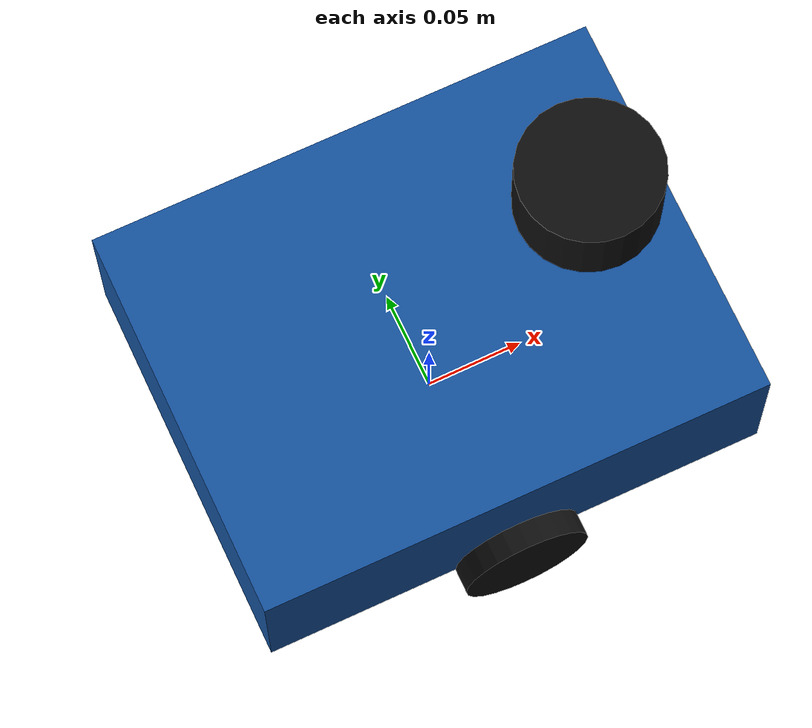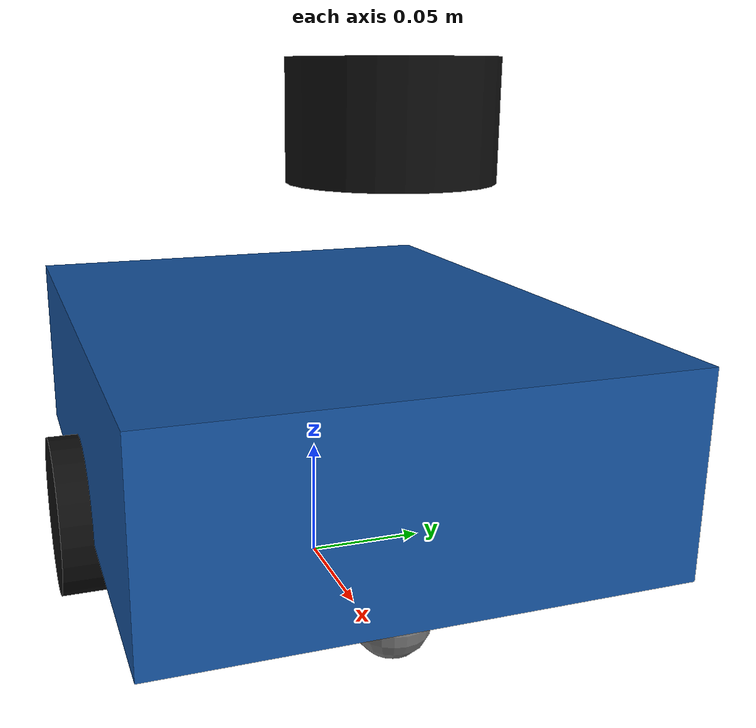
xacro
<?xml version="1.0"?>
<robot name="openrobot_one" xmlns:xacro="http://www.ros.org/wiki/xacro">
  <xacro:include filename="common_properties.xacro"/>
  <xacro:include filename="inertial_macros.xacro"/>
  <xacro:include filename="base.xacro"/>
  <xacro:include filename="wheel.xacro"/>
  <xacro:include filename="sensor.xacro"/>
  <xacro:include filename="gazebo.xacro"/>

  <xacro:arg name="base_length" default="0.26"/>
  <xacro:arg name="base_width" default="0.20"/>
  <xacro:arg name="base_height" default="0.08"/>
  <xacro:arg name="wheel_radius" default="0.0325"/>
  <xacro:arg name="wheel_width" default="0.025"/>
  <xacro:arg name="wheel_separation" default="0.20"/>
  <xacro:arg name="update_rate" default="50.0"/>
  <xacro:arg name="max_wheel_torque" default="20.0"/>
  <xacro:arg name="max_wheel_acceleration" default="1.0"/>
  <xacro:arg name="scan_topic" default="scan"/>

  <xacro:property name="base_length" value="$(arg base_length)"/>
  <xacro:property name="base_width" value="$(arg base_width)"/>
  <xacro:property name="base_height" value="$(arg base_height)"/>
  <xacro:property name="wheel_radius" value="$(arg wheel_radius)"/>
  <xacro:property name="wheel_width" value="$(arg wheel_width)"/>
  <xacro:property name="wheel_separation" value="$(arg wheel_separation)"/>
  <xacro:property name="update_rate" value="$(arg update_rate)"/>
  <xacro:property
    name="max_wheel_torque"
    value="$(arg max_wheel_torque)"/>
  <xacro:property
    name="max_wheel_acceleration"
    value="$(arg max_wheel_acceleration)"/>
  <xacro:property name="scan_topic" value="$(arg scan_topic)"/>
  <xacro:property name="base_mass" value="3.0"/>
  <xacro:property name="wheel_mass" value="0.25"/>
  <xacro:property name="caster_radius" value="0.015"/>
  <xacro:property name="caster_mass" value="0.05"/>
  <xacro:property name="laser_radius" value="0.035"/>
  <xacro:property name="laser_height" value="0.04"/>
  <xacro:property name="laser_mass" value="0.15"/>

  <xacro:openrobot_base
    base_length="${base_length}"
    base_width="${base_width}"
    base_height="${base_height}"
    base_mass="${base_mass}"
    wheel_radius="${wheel_radius}"/>

  <xacro:openrobot_wheels
    base_length="${base_length}"
    base_height="${base_height}"
    wheel_radius="${wheel_radius}"
    wheel_width="${wheel_width}"
    wheel_separation="${wheel_separation}"
    wheel_mass="${wheel_mass}"
    caster_radius="${caster_radius}"
    caster_mass="${caster_mass}"/>

  <xacro:openrobot_laser
    laser_x="0.08"
    laser_z="0.12"
    laser_radius="${laser_radius}"
    laser_height="${laser_height}"
    laser_mass="${laser_mass}"/>

  <xacro:openrobot_gazebo
    wheel_radius="${wheel_radius}"
    wheel_separation="${wheel_separation}"
    update_rate="${update_rate}"
    max_wheel_torque="${max_wheel_torque}"
    max_wheel_acceleration="${max_wheel_acceleration}"
    scan_topic="${scan_topic}"/>
</robot>

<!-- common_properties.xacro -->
<robot xmlns:xacro="http://www.ros.org/wiki/xacro">
  <material name="openrobot_blue">
    <color rgba="0.08 0.32 0.62 1.0"/>
  </material>
  <material name="openrobot_black">
    <color rgba="0.05 0.05 0.05 1.0"/>
  </material>
  <material name="openrobot_gray">
    <color rgba="0.45 0.45 0.45 1.0"/>
  </material>
</robot>

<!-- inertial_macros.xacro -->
<robot xmlns:xacro="http://www.ros.org/wiki/xacro">
  <xacro:macro name="box_inertial" params="mass x y z">
    <inertial>
      <mass value="${mass}"/>
      <inertia
        ixx="${mass * (y * y + z * z) / 12.0}"
        ixy="0.0"
        ixz="0.0"
        iyy="${mass * (x * x + z * z) / 12.0}"
        iyz="0.0"
        izz="${mass * (x * x + y * y) / 12.0}"/>
    </inertial>
  </xacro:macro>

  <xacro:macro name="cylinder_inertial" params="mass radius length rpy">
    <inertial>
      <origin xyz="0 0 0" rpy="${rpy}"/>
      <mass value="${mass}"/>
      <inertia
        ixx="${mass * (3.0 * radius * radius + length * length) / 12.0}"
        ixy="0.0"
        ixz="0.0"
        iyy="${mass * (3.0 * radius * radius + length * length) / 12.0}"
        iyz="0.0"
        izz="${mass * radius * radius / 2.0}"/>
    </inertial>
  </xacro:macro>

  <xacro:macro name="sphere_inertial" params="mass radius">
    <inertial>
      <mass value="${mass}"/>
      <inertia
        ixx="${2.0 * mass * radius * radius / 5.0}"
        ixy="0.0"
        ixz="0.0"
        iyy="${2.0 * mass * radius * radius / 5.0}"
        iyz="0.0"
        izz="${2.0 * mass * radius * radius / 5.0}"/>
    </inertial>
  </xacro:macro>
</robot>

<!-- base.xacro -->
<robot xmlns:xacro="http://www.ros.org/wiki/xacro">
  <xacro:macro
    name="openrobot_base"
    params="base_length base_width base_height base_mass wheel_radius">
    <link name="base_footprint"/>

    <link name="base_link">
      <visual>
        <geometry>
          <box size="${base_length} ${base_width} ${base_height}"/>
        </geometry>
        <material name="openrobot_blue"/>
      </visual>
      <collision>
        <geometry>
          <box size="${base_length} ${base_width} ${base_height}"/>
        </geometry>
      </collision>
      <xacro:box_inertial
        mass="${base_mass}"
        x="${base_length}"
        y="${base_width}"
        z="${base_height}"/>
    </link>

    <joint name="base_footprint_joint" type="fixed">
      <parent link="base_footprint"/>
      <child link="base_link"/>
      <origin xyz="0 0 ${wheel_radius + base_height / 2.0}"/>
    </joint>
  </xacro:macro>
</robot>

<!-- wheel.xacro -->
<robot xmlns:xacro="http://www.ros.org/wiki/xacro">
  <xacro:macro
    name="drive_wheel"
    params="side y wheel_radius wheel_width wheel_mass base_height">
    <link name="${side}_wheel_link">
      <visual>
        <origin rpy="${pi / 2.0} 0 0"/>
        <geometry>
          <cylinder radius="${wheel_radius}" length="${wheel_width}"/>
        </geometry>
        <material name="openrobot_black"/>
      </visual>
      <collision>
        <origin rpy="${pi / 2.0} 0 0"/>
        <geometry>
          <cylinder radius="${wheel_radius}" length="${wheel_width}"/>
        </geometry>
      </collision>
      <xacro:cylinder_inertial
        mass="${wheel_mass}"
        radius="${wheel_radius}"
        length="${wheel_width}"
        rpy="${pi / 2.0} 0 0"/>
    </link>

    <joint name="${side}_wheel_joint" type="continuous">
      <parent link="base_link"/>
      <child link="${side}_wheel_link"/>
      <origin xyz="0 ${y} ${-base_height / 2.0}"/>
      <axis xyz="0 1 0"/>
    </joint>
  </xacro:macro>

  <xacro:macro
    name="openrobot_wheels"
    params="
      base_length base_height wheel_radius wheel_width wheel_separation
      wheel_mass caster_radius caster_mass">
    <xacro:drive_wheel
      side="left"
      y="${wheel_separation / 2.0}"
      wheel_radius="${wheel_radius}"
      wheel_width="${wheel_width}"
      wheel_mass="${wheel_mass}"
      base_height="${base_height}"/>
    <xacro:drive_wheel
      side="right"
      y="${-wheel_separation / 2.0}"
      wheel_radius="${wheel_radius}"
      wheel_width="${wheel_width}"
      wheel_mass="${wheel_mass}"
      base_height="${base_height}"/>

    <link name="caster_link">
      <visual>
        <geometry>
          <sphere radius="${caster_radius}"/>
        </geometry>
        <material name="openrobot_gray"/>
      </visual>
      <collision>
        <geometry>
          <sphere radius="${caster_radius}"/>
        </geometry>
      </collision>
      <xacro:sphere_inertial mass="${caster_mass}" radius="${caster_radius}"/>
    </link>

    <joint name="caster_joint" type="fixed">
      <parent link="base_link"/>
      <child link="caster_link"/>
      <origin
        xyz="${-base_length / 2.0 + 0.04} 0
          ${caster_radius - wheel_radius - base_height / 2.0}"/>
    </joint>

    <link name="front_caster_link">
      <visual>
        <geometry>
          <sphere radius="${caster_radius}"/>
        </geometry>
        <material name="openrobot_gray"/>
      </visual>
      <collision>
        <geometry>
          <sphere radius="${caster_radius}"/>
        </geometry>
      </collision>
      <xacro:sphere_inertial mass="${caster_mass}" radius="${caster_radius}"/>
    </link>

    <joint name="front_caster_joint" type="fixed">
      <parent link="base_link"/>
      <child link="front_caster_link"/>
      <origin
        xyz="${base_length / 2.0 - 0.04} 0
          ${caster_radius - wheel_radius - base_height / 2.0}"/>
    </joint>
  </xacro:macro>
</robot>

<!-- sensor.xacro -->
<robot xmlns:xacro="http://www.ros.org/wiki/xacro">
  <xacro:macro
    name="openrobot_laser"
    params="laser_x laser_z laser_radius laser_height laser_mass">
    <link name="laser_link">
      <visual>
        <geometry>
          <cylinder radius="${laser_radius}" length="${laser_height}"/>
        </geometry>
        <material name="openrobot_black"/>
      </visual>
      <collision>
        <geometry>
          <cylinder radius="${laser_radius}" length="${laser_height}"/>
        </geometry>
      </collision>
      <xacro:cylinder_inertial
        mass="${laser_mass}"
        radius="${laser_radius}"
        length="${laser_height}"
        rpy="0 0 0"/>
    </link>

    <joint name="laser_joint" type="fixed">
      <parent link="base_link"/>
      <child link="laser_link"/>
      <origin xyz="${laser_x} 0 ${laser_z}"/>
    </joint>
  </xacro:macro>
</robot>
